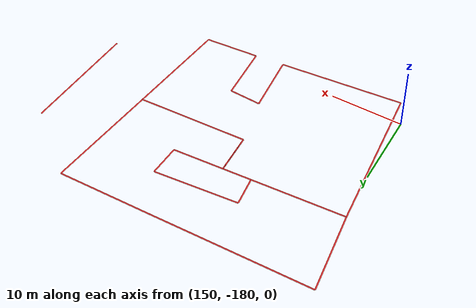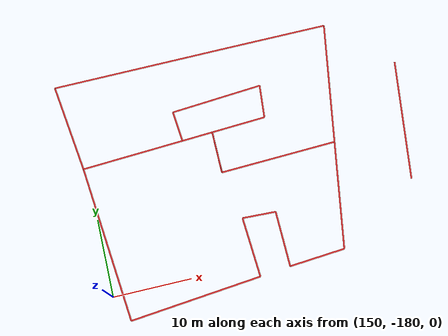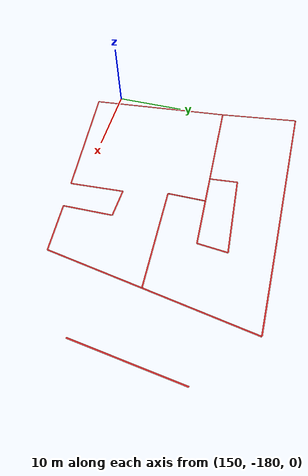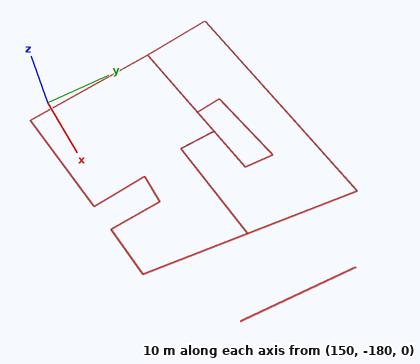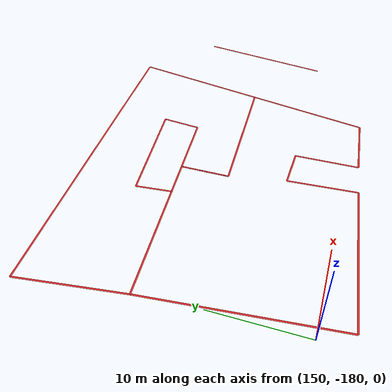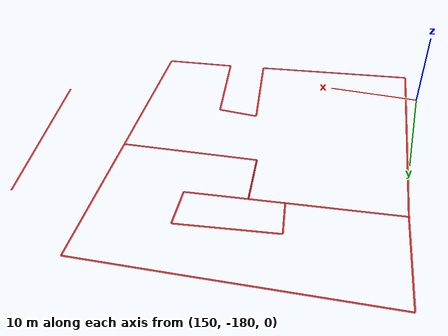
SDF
<sdf version="1.4">
 <world name="default">
  <include><uri>model://sun</uri></include>
  <model name="office_building_150830003">
   <static>true</static>
   <pose>191.352359603 -166.044316287 0.0 0 0 0</pose>
   <link name="office_building_150830003_0">
    <collision name="office_building_150830003_0">
     <geometry><box><size>15.7725194389 0.2 0</size></box></geometry>
    </collision>
    <visual name="office_building_150830003_0">
     <geometry><box><size>15.7725194389 0.2 0</size></box></geometry>
     <material>
      <script><uri>file://media/materials/scripts/gazebo.material</uri><name>Gazebo/Red</name></script>
     </material>
    </visual>
    <pose>0.0 0.0 0 0 0 -1.69729628061</pose>
   </link>
  </model>
  <model name="office_building_150830042">
   <static>true</static>
   <pose>166.941853911 -158.665299893 0.0 0 0 0</pose>
   <link name="office_building_150830042_0">
    <collision name="office_building_150830042_0">
     <geometry><box><size>4.04050041238 0.2 0</size></box></geometry>
    </collision>
    <visual name="office_building_150830042_0">
     <geometry><box><size>4.04050041238 0.2 0</size></box></geometry>
     <material>
      <script><uri>file://media/materials/scripts/gazebo.material</uri><name>Gazebo/Red</name></script>
     </material>
    </visual>
    <pose>-4.35024248392 -1.61105862331 0 0 0 1.6645315134</pose>
   </link>
   <link name="office_building_150830042_1">
    <collision name="office_building_150830042_1">
     <geometry><box><size>13.2544225971 0.2 0</size></box></geometry>
    </collision>
    <visual name="office_building_150830042_1">
     <geometry><box><size>13.2544225971 0.2 0</size></box></geometry>
     <material>
      <script><uri>file://media/materials/scripts/gazebo.material</uri><name>Gazebo/Red</name></script>
     </material>
    </visual>
    <pose>-10.7772376638 -4.00627428959 0 0 0 0.0579503372445</pose>
   </link>
   <link name="office_building_150830042_2">
    <collision name="office_building_150830042_2">
     <geometry><box><size>11.6165258692 0.2 0</size></box></geometry>
    </collision>
    <visual name="office_building_150830042_2">
     <geometry><box><size>11.6165258692 0.2 0</size></box></geometry>
     <material>
      <script><uri>file://media/materials/scripts/gazebo.material</uri><name>Gazebo/Red</name></script>
     </material>
    </visual>
    <pose>-18.1551779208 1.36797253468 0 0 0 -1.43925004081</pose>
   </link>
   <link name="office_building_150830042_3">
    <collision name="office_building_150830042_3">
     <geometry><box><size>17.6810533942 0.2 0</size></box></geometry>
    </collision>
    <visual name="office_building_150830042_3">
     <geometry><box><size>17.6810533942 0.2 0</size></box></geometry>
     <material>
      <script><uri>file://media/materials/scripts/gazebo.material</uri><name>Gazebo/Red</name></script>
     </material>
    </visual>
    <pose>-10.0770377153 7.22310743705 0 0 0 -3.1306141429</pose>
   </link>
   <link name="office_building_150830042_4">
    <collision name="office_building_150830042_4">
     <geometry><box><size>5.52676466624 0.2 0</size></box></geometry>
    </collision>
    <visual name="office_building_150830042_4">
     <geometry><box><size>5.52676466624 0.2 0</size></box></geometry>
     <material>
      <script><uri>file://media/materials/scripts/gazebo.material</uri><name>Gazebo/Red</name></script>
     </material>
    </visual>
    <pose>1.52614924126 7.35250728898 0 0 0 -3.12988717115</pose>
   </link>
   <link name="office_building_150830042_5">
    <collision name="office_building_150830042_5">
     <geometry><box><size>13.2882890394 0.2 0</size></box></geometry>
    </collision>
    <visual name="office_building_150830042_5">
     <geometry><box><size>13.2882890394 0.2 0</size></box></geometry>
     <material>
      <script><uri>file://media/materials/scripts/gazebo.material</uri><name>Gazebo/Red</name></script>
     </material>
    </visual>
    <pose>10.9332375107 7.44240577394 0 0 0 -3.13293040673</pose>
   </link>
   <link name="office_building_150830042_6">
    <collision name="office_building_150830042_6">
     <geometry><box><size>15.9585552372 0.2 0</size></box></geometry>
    </collision>
    <visual name="office_building_150830042_6">
     <geometry><box><size>15.9585552372 0.2 0</size></box></geometry>
     <material>
      <script><uri>file://media/materials/scripts/gazebo.material</uri><name>Gazebo/Red</name></script>
     </material>
    </visual>
    <pose>16.2819448005 -0.373500905797 0 0 0 1.40775600978</pose>
   </link>
   <link name="office_building_150830042_7">
    <collision name="office_building_150830042_7">
     <geometry><box><size>15.1242624379 0.2 0</size></box></geometry>
    </collision>
    <visual name="office_building_150830042_7">
     <geometry><box><size>15.1242624379 0.2 0</size></box></geometry>
     <material>
      <script><uri>file://media/materials/scripts/gazebo.material</uri><name>Gazebo/Red</name></script>
     </material>
    </visual>
    <pose>7.43107127983 -8.55912078285 0 0 0 0.0412911928365</pose>
   </link>
   <link name="office_building_150830042_8">
    <collision name="office_building_150830042_8">
     <geometry><box><size>5.48569829313 0.2 0</size></box></geometry>
    </collision>
    <visual name="office_building_150830042_8">
     <geometry><box><size>5.48569829313 0.2 0</size></box></geometry>
     <material>
      <script><uri>file://media/materials/scripts/gazebo.material</uri><name>Gazebo/Red</name></script>
     </material>
    </visual>
    <pose>-0.141377599728 -6.12848355955 0 0 0 -1.56468464378</pose>
   </link>
   <link name="office_building_150830042_9">
    <collision name="office_building_150830042_9">
     <geometry><box><size>7.08421626645 0.2 0</size></box></geometry>
    </collision>
    <visual name="office_building_150830042_9">
     <geometry><box><size>7.08421626645 0.2 0</size></box></geometry>
     <material>
      <script><uri>file://media/materials/scripts/gazebo.material</uri><name>Gazebo/Red</name></script>
     </material>
    </visual>
    <pose>3.37785148546 -3.17762858785 0 0 0 -3.08282062616</pose>
   </link>
   <link name="office_building_150830042_10">
    <collision name="office_building_150830042_10">
     <geometry><box><size>4.34141436295 0.2 0</size></box></geometry>
    </collision>
    <visual name="office_building_150830042_10">
     <geometry><box><size>4.34141436295 0.2 0</size></box></geometry>
     <material>
      <script><uri>file://media/materials/scripts/gazebo.material</uri><name>Gazebo/Red</name></script>
     </material>
    </visual>
    <pose>7.1083708767 -0.80759815105 0 0 0 -1.66053127581</pose>
   </link>
   <link name="office_building_150830042_11">
    <collision name="office_building_150830042_11">
     <geometry><box><size>11.8806004647 0.2 0</size></box></geometry>
    </collision>
    <visual name="office_building_150830042_11">
     <geometry><box><size>11.8806004647 0.2 0</size></box></geometry>
     <material>
      <script><uri>file://media/materials/scripts/gazebo.material</uri><name>Gazebo/Red</name></script>
     </material>
    </visual>
    <pose>1.38178201721 0.877349033254 0 0 0 0.0803899416699</pose>
   </link>
  </model>
  <model name="office_building_150830035">
   <static>true</static>
   <pose>167.415098506 -173.216961116 0.0 0 0 0</pose>
   <link name="office_building_150830035_0">
    <collision name="office_building_150830035_0">
     <geometry><box><size>17.0311099477 0.2 0</size></box></geometry>
    </collision>
    <visual name="office_building_150830035_0">
     <geometry><box><size>17.0311099477 0.2 0</size></box></geometry>
     <material>
      <script><uri>file://media/materials/scripts/gazebo.material</uri><name>Gazebo/Red</name></script>
     </material>
    </visual>
    <pose>-7.36914151096 -9.31740160482 0 0 0 0.0999860188654</pose>
   </link>
   <link name="office_building_150830035_1">
    <collision name="office_building_150830035_1">
     <geometry><box><size>20.4295213351 0.2 0</size></box></geometry>
    </collision>
    <visual name="office_building_150830035_1">
     <geometry><box><size>20.4295213351 0.2 0</size></box></geometry>
     <material>
      <script><uri>file://media/materials/scripts/gazebo.material</uri><name>Gazebo/Red</name></script>
     </material>
    </visual>
    <pose>-16.854367424 -0.00293368379025 0 0 0 -1.4715414092</pose>
   </link>
   <link name="office_building_150830035_2">
    <collision name="office_building_150830035_2">
     <geometry><box><size>13.2544225971 0.2 0</size></box></geometry>
    </collision>
    <visual name="office_building_150830035_2">
     <geometry><box><size>13.2544225971 0.2 0</size></box></geometry>
     <material>
      <script><uri>file://media/materials/scripts/gazebo.material</uri><name>Gazebo/Red</name></script>
     </material>
    </visual>
    <pose>-11.2504822593 10.5453869334 0 0 0 -3.08364231635</pose>
   </link>
   <link name="office_building_150830035_3">
    <collision name="office_building_150830035_3">
     <geometry><box><size>4.01000542199 0.2 0</size></box></geometry>
    </collision>
    <visual name="office_building_150830035_3">
     <geometry><box><size>4.01000542199 0.2 0</size></box></geometry>
     <material>
      <script><uri>file://media/materials/scripts/gazebo.material</uri><name>Gazebo/Red</name></script>
     </material>
    </visual>
    <pose>-2.63289062528 11.047598364 0 0 0 -3.08251737102</pose>
   </link>
   <link name="office_building_150830035_4">
    <collision name="office_building_150830035_4">
     <geometry><box><size>5.48569829313 0.2 0</size></box></geometry>
    </collision>
    <visual name="office_building_150830035_4">
     <geometry><box><size>5.48569829313 0.2 0</size></box></geometry>
     <material>
      <script><uri>file://media/materials/scripts/gazebo.material</uri><name>Gazebo/Red</name></script>
     </material>
    </visual>
    <pose>-0.614622195196 8.42317766343 0 0 0 1.57690800981</pose>
   </link>
   <link name="office_building_150830035_5">
    <collision name="office_building_150830035_5">
     <geometry><box><size>15.1242624379 0.2 0</size></box></geometry>
    </collision>
    <visual name="office_building_150830035_5">
     <geometry><box><size>15.1242624379 0.2 0</size></box></geometry>
     <material>
      <script><uri>file://media/materials/scripts/gazebo.material</uri><name>Gazebo/Red</name></script>
     </material>
    </visual>
    <pose>6.95782668437 5.99254044012 0 0 0 -3.10030146075</pose>
   </link>
   <link name="office_building_150830035_6">
    <collision name="office_building_150830035_6">
     <geometry><box><size>13.9657038839 0.2 0</size></box></geometry>
    </collision>
    <visual name="office_building_150830035_6">
     <geometry><box><size>13.9657038839 0.2 0</size></box></geometry>
     <material>
      <script><uri>file://media/materials/scripts/gazebo.material</uri><name>Gazebo/Red</name></script>
     </material>
    </visual>
    <pose>13.3851065355 -0.586374381274 0 0 0 1.40848794003</pose>
   </link>
   <link name="office_building_150830035_7">
    <collision name="office_building_150830035_7">
     <geometry><box><size>7.21830054879 0.2 0</size></box></geometry>
    </collision>
    <visual name="office_building_150830035_7">
     <geometry><box><size>7.21830054879 0.2 0</size></box></geometry>
     <material>
      <script><uri>file://media/materials/scripts/gazebo.material</uri><name>Gazebo/Red</name></script>
     </material>
    </visual>
    <pose>8.6595548501 -7.77156981117 0 0 0 0.081583312309</pose>
   </link>
   <link name="office_building_150830035_8">
    <collision name="office_building_150830035_8">
     <geometry><box><size>7.18650275789 0.2 0</size></box></geometry>
    </collision>
    <visual name="office_building_150830035_8">
     <geometry><box><size>7.18650275789 0.2 0</size></box></geometry>
     <material>
      <script><uri>file://media/materials/scripts/gazebo.material</uri><name>Gazebo/Red</name></script>
     </material>
    </visual>
    <pose>4.990013422 -4.47316771559 0 0 0 -1.55064734692</pose>
   </link>
   <link name="office_building_150830035_9">
    <collision name="office_building_150830035_9">
     <geometry><box><size>4.30640298922 0.2 0</size></box></geometry>
    </collision>
    <visual name="office_building_150830035_9">
     <geometry><box><size>4.30640298922 0.2 0</size></box></geometry>
     <material>
      <script><uri>file://media/materials/scripts/gazebo.material</uri><name>Gazebo/Red</name></script>
     </material>
    </visual>
    <pose>2.76599347211 -0.798252189628 0 0 0 -0.0382749315037</pose>
   </link>
   <link name="office_building_150830035_10">
    <collision name="office_building_150830035_10">
     <geometry><box><size>7.76696564339 0.2 0</size></box></geometry>
    </collision>
    <visual name="office_building_150830035_10">
     <geometry><box><size>7.76696564339 0.2 0</size></box></geometry>
     <material>
      <script><uri>file://media/materials/scripts/gazebo.material</uri><name>Gazebo/Red</name></script>
     </material>
    </visual>
    <pose>0.85912600794 -4.59162089512 0 0 0 1.63386326241</pose>
   </link>
  </model>
 </world>
</sdf>
